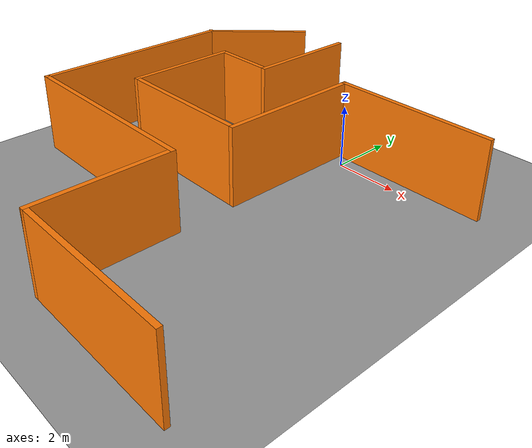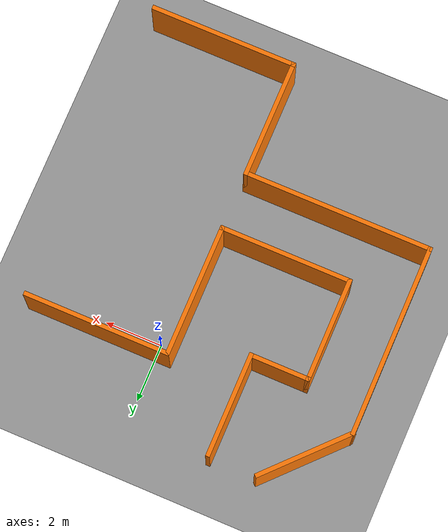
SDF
<sdf version="1.5">
 <world name="default">
  <include><uri>model://hsr_ground_plane</uri></include>
  <include><uri>model://hsr_wall_environment</uri></include>
 </world>
</sdf>

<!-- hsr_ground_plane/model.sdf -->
<sdf version="1.5">
  <model name="hsr_ground_plane">
    <static>true</static>
    <link name="link">
      <collision name="collision">
        <geometry>
          <plane>
            <normal>0 0 1</normal>
            <size>100 100</size>
          </plane>
        </geometry>
        <surface>
          <friction>
            <ode>
              <mu>100</mu>
              <mu2>50</mu2>
            </ode>
          </friction>
        </surface>
      </collision>
      <visual name="visual">
        <cast_shadows>false</cast_shadows>
        <geometry>
          <plane>
            <normal>0 0 1</normal>
            <size>100 100</size>
          </plane>
        </geometry>
        <material>
          <script>
            <uri>file://media/materials/scripts/gazebo.material</uri>
            <name>Gazebo/Grey</name>
          </script>
        </material>
      </visual>
    </link>
  </model>
</sdf>

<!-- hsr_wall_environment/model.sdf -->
<sdf version='1.7'>
  <model name='hsr_wall_environment'>
    <pose>-1.26551 -3.48449 0 0 -0 0</pose>
    <link name='Wall_0'>
      <collision name='Wall_0_Collision'>
        <geometry>
          <box>
            <size>6.7 0.15 2.5</size>
          </box>
        </geometry>
        <pose>0 0 1.25 0 -0 0</pose>
      </collision>
      <visual name='Wall_0_Visual'>
        <pose>0 0 1.25 0 -0 0</pose>
        <geometry>
          <box>
            <size>6.7 0.15 2.5</size>
          </box>
        </geometry>
        <material>
          <script>
            <uri>file://media/materials/scripts/gazebo.material</uri>
            <name>Gazebo/Grey</name>
          </script>
          <ambient>0.996078 0.47451 0.0196078 1</ambient>
        </material>
        <meta>
          <layer>0</layer>
        </meta>
      </visual>
      <pose>-5.73449 0.759494 0 0 -0 -1.5708</pose>
    </link>
    <link name='Wall_10'>
      <collision name='Wall_10_Collision'>
        <geometry>
          <box>
            <size>3.65 0.15 2.5</size>
          </box>
        </geometry>
        <pose>0 0 1.25 0 -0 0</pose>
      </collision>
      <visual name='Wall_10_Visual'>
        <pose>0 0 1.25 0 -0 0</pose>
        <geometry>
          <box>
            <size>3.65 0.15 2.5</size>
          </box>
        </geometry>
        <material>
          <script>
            <uri>file://media/materials/scripts/gazebo.material</uri>
            <name>Gazebo/Grey</name>
          </script>
          <ambient>0.996078 0.47451 0.0196078 1</ambient>
        </material>
        <meta>
          <layer>0</layer>
        </meta>
      </visual>
      <pose>-1.73449 4.73449 0 0 -0 1.5708</pose>
    </link>
    <link name='Wall_12'>
      <collision name='Wall_12_Collision'>
        <geometry>
          <box>
            <size>4.65 0.15 2.5</size>
          </box>
        </geometry>
        <pose>0 0 1.25 0 -0 0</pose>
      </collision>
      <visual name='Wall_12_Visual'>
        <pose>0 0 1.25 0 -0 0</pose>
        <geometry>
          <box>
            <size>4.65 0.15 2.5</size>
          </box>
        </geometry>
        <material>
          <script>
            <uri>file://media/materials/scripts/gazebo.material</uri>
            <name>Gazebo/Grey</name>
          </script>
          <ambient>0.996078 0.47451 0.0196078 1</ambient>
        </material>
        <meta>
          <layer>0</layer>
        </meta>
      </visual>
      <pose>0.765507 1.73449 0 0 -0 1.5708</pose>
    </link>
    <link name='Wall_15'>
      <collision name='Wall_15_Collision'>
        <geometry>
          <box>
            <size>4.15 0.15 2.5</size>
          </box>
        </geometry>
        <pose>0 0 1.25 0 -0 0</pose>
      </collision>
      <visual name='Wall_15_Visual'>
        <pose>0 0 1.25 0 -0 0</pose>
        <geometry>
          <box>
            <size>4.15 0.15 2.5</size>
          </box>
        </geometry>
        <material>
          <script>
            <uri>file://media/materials/scripts/gazebo.material</uri>
            <name>Gazebo/Grey</name>
          </script>
          <ambient>0.996078 0.47451 0.0196078 1</ambient>
        </material>
        <meta>
          <layer>0</layer>
        </meta>
      </visual>
      <pose>0.765507 -4.51551 0 0 -0 -1.5708</pose>
    </link>
    <link name='Wall_16'>
      <collision name='Wall_16_Collision'>
        <geometry>
          <box>
            <size>5.15 0.15 2.5</size>
          </box>
        </geometry>
        <pose>0 0 1.25 0 -0 0</pose>
      </collision>
      <visual name='Wall_16_Visual'>
        <pose>0 0 1.25 0 -0 0</pose>
        <geometry>
          <box>
            <size>5.15 0.15 2.5</size>
          </box>
        </geometry>
        <material>
          <script>
            <uri>file://media/materials/scripts/gazebo.material</uri>
            <name>Gazebo/Grey</name>
          </script>
          <ambient>0.996078 0.47451 0.0196078 1</ambient>
        </material>
        <meta>
          <layer>0</layer>
        </meta>
      </visual>
      <pose>3.26551 -6.51551 0 0 -0 0</pose>
    </link>
    <link name='Wall_18'>
      <collision name='Wall_18_Collision'>
        <geometry>
          <box>
            <size>5.15 0.15 2.5</size>
          </box>
        </geometry>
        <pose>0 0 1.25 0 -0 0</pose>
      </collision>
      <visual name='Wall_18_Visual'>
        <pose>0 0 1.25 0 -0 0</pose>
        <geometry>
          <box>
            <size>5.15 0.15 2.5</size>
          </box>
        </geometry>
        <material>
          <script>
            <uri>file://media/materials/scripts/gazebo.material</uri>
            <name>Gazebo/Grey</name>
          </script>
          <ambient>0.996078 0.47451 0.0196078 1</ambient>
        </material>
        <meta>
          <layer>0</layer>
        </meta>
      </visual>
      <pose>3.26551 3.98449 0 0 -0 0</pose>
    </link>
    <link name='Wall_2'>
      <collision name='Wall_2_Collision'>
        <geometry>
          <box>
            <size>6.65 0.15 2.5</size>
          </box>
        </geometry>
        <pose>0 0 1.25 0 -0 0</pose>
      </collision>
      <visual name='Wall_2_Visual'>
        <pose>0 0 1.25 0 -0 0</pose>
        <geometry>
          <box>
            <size>6.65 0.15 2.5</size>
          </box>
        </geometry>
        <material>
          <script>
            <uri>file://media/materials/scripts/gazebo.material</uri>
            <name>Gazebo/Grey</name>
          </script>
          <ambient>0.996078 0.47451 0.0196078 1</ambient>
        </material>
        <meta>
          <layer>0</layer>
        </meta>
      </visual>
      <pose>-2.48449 -2.51551 0 0 -0 0</pose>
    </link>
    <link name='Wall_20'>
      <collision name='Wall_20_Collision'>
        <geometry>
          <box>
            <size>3.51043 0.15 2.5</size>
          </box>
        </geometry>
        <pose>0 0 1.25 0 -0 0</pose>
      </collision>
      <visual name='Wall_20_Visual'>
        <pose>0 0 1.25 0 -0 0</pose>
        <geometry>
          <box>
            <size>3.51043 0.15 2.5</size>
          </box>
        </geometry>
        <material>
          <script>
            <uri>file://media/materials/scripts/gazebo.material</uri>
            <name>Gazebo/Grey</name>
          </script>
          <ambient>0.996078 0.47451 0.0196078 1</ambient>
        </material>
        <meta>
          <layer>0</layer>
        </meta>
      </visual>
      <pose>-4.58449 5.25949 0 0 -0 0.816967</pose>
    </link>
    <link name='Wall_4'>
      <collision name='Wall_4_Collision'>
        <geometry>
          <box>
            <size>4.65 0.15 2.5</size>
          </box>
        </geometry>
        <pose>0 0 1.25 0 -0 0</pose>
      </collision>
      <visual name='Wall_4_Visual'>
        <pose>0 0 1.25 0 -0 0</pose>
        <geometry>
          <box>
            <size>4.65 0.15 2.5</size>
          </box>
        </geometry>
        <material>
          <script>
            <uri>file://media/materials/scripts/gazebo.material</uri>
            <name>Gazebo/Grey</name>
          </script>
          <ambient>0.996078 0.47451 0.0196078 1</ambient>
        </material>
        <meta>
          <layer>0</layer>
        </meta>
      </visual>
      <pose>-1.48449 -0.515506 0 0 -0 0</pose>
    </link>
    <link name='Wall_6'>
      <collision name='Wall_6_Collision'>
        <geometry>
          <box>
            <size>3.65 0.15 2.5</size>
          </box>
        </geometry>
        <pose>0 0 1.25 0 -0 0</pose>
      </collision>
      <visual name='Wall_6_Visual'>
        <pose>0 0 1.25 0 -0 0</pose>
        <geometry>
          <box>
            <size>3.65 0.15 2.5</size>
          </box>
        </geometry>
        <material>
          <script>
            <uri>file://media/materials/scripts/gazebo.material</uri>
            <name>Gazebo/Grey</name>
          </script>
          <ambient>0.996078 0.47451 0.0196078 1</ambient>
        </material>
        <meta>
          <layer>0</layer>
        </meta>
      </visual>
      <pose>-3.73449 1.23449 0 0 -0 1.5708</pose>
    </link>
    <link name='Wall_8'>
      <collision name='Wall_8_Collision'>
        <geometry>
          <box>
            <size>2.15 0.15 2.5</size>
          </box>
        </geometry>
        <pose>0 0 1.25 0 -0 0</pose>
      </collision>
      <visual name='Wall_8_Visual'>
        <pose>0 0 1.25 0 -0 0</pose>
        <geometry>
          <box>
            <size>2.15 0.15 2.5</size>
          </box>
        </geometry>
        <material>
          <script>
            <uri>file://media/materials/scripts/gazebo.material</uri>
            <name>Gazebo/Grey</name>
          </script>
          <ambient>0.996078 0.47451 0.0196078 1</ambient>
        </material>
        <meta>
          <layer>0</layer>
        </meta>
      </visual>
      <pose>-2.73449 2.98449 0 0 -0 0</pose>
    </link>
    <static>1</static>
  </model>
</sdf>
